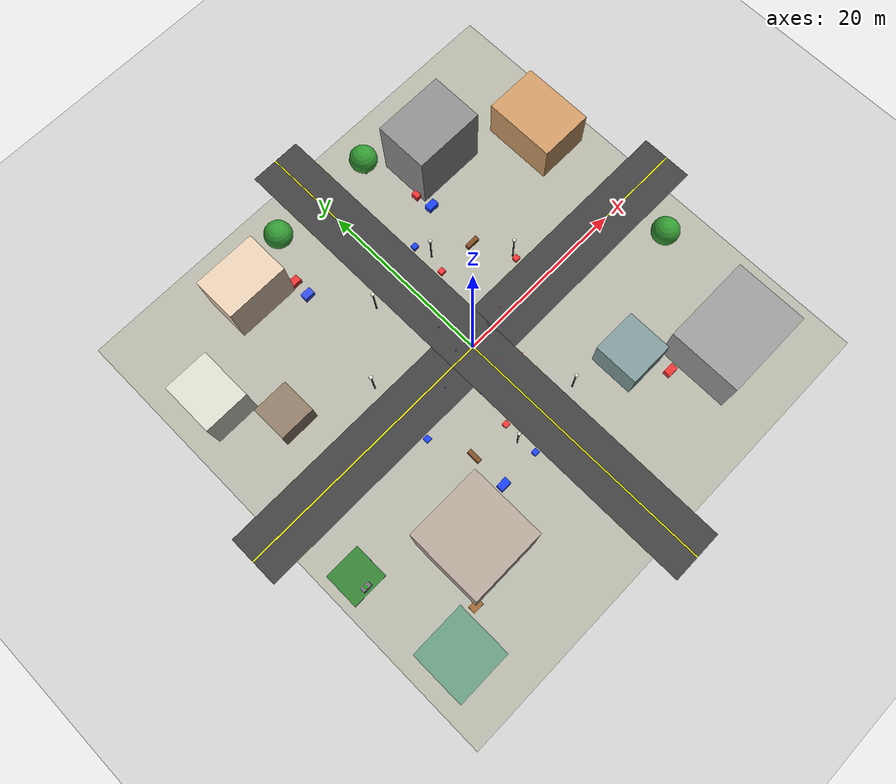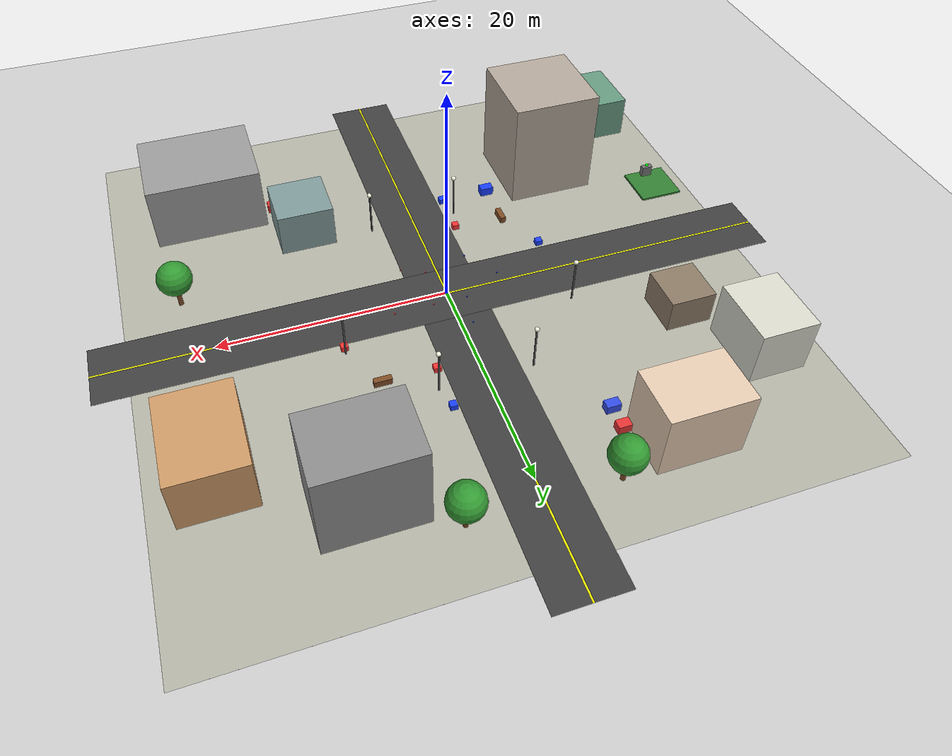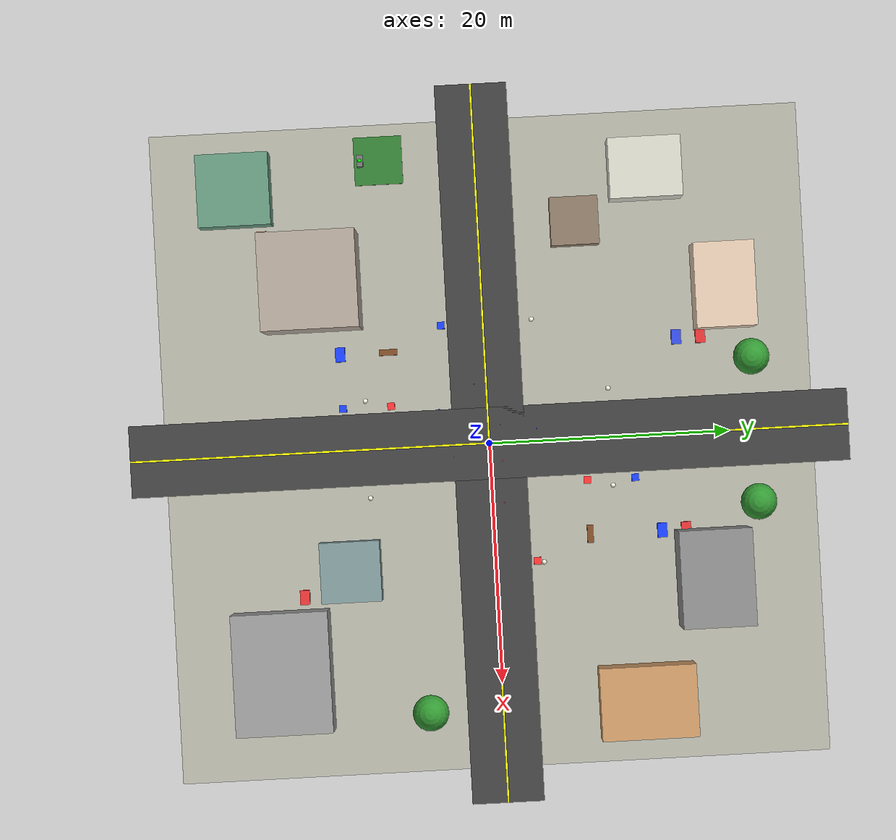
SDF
<sdf version="1.6">
 <world name="gcar_city">
  <include><uri>model://sun</uri></include>
  <include><uri>model://ground_plane</uri></include>
  <model name="road_ns_main">
   <static>true</static>
   <link name="link">
    <visual name="visual">
     <geometry><box><size>6 60 0.001</size></box></geometry>
     <material><ambient>0.2 0.2 0.2 1</ambient><diffuse>0.25 0.25 0.25 1</diffuse></material>
    </visual>
   </link>
  </model>
  <model name="road_ew_main">
   <static>true</static>
   <link name="link">
    <visual name="visual">
     <geometry><box><size>60 6 0.001</size></box></geometry>
     <material><ambient>0.2 0.2 0.2 1</ambient><diffuse>0.25 0.25 0.25 1</diffuse></material>
    </visual>
   </link>
  </model>
  <model name="lane_marking_ns">
   <static>true</static>
   <pose>0 0 0.001 0 0 0</pose>
   <link name="link">
    <visual name="visual">
     <geometry><box><size>0.15 60 0.001</size></box></geometry>
     <material><ambient>1 1 0 1</ambient><diffuse>1 1 0 1</diffuse></material>
    </visual>
   </link>
  </model>
  <model name="lane_marking_ew">
   <static>true</static>
   <pose>0 0 0.001 0 0 1.5708</pose>
   <link name="link">
    <visual name="visual">
     <geometry><box><size>0.15 60 0.001</size></box></geometry>
     <material><ambient>1 1 0 1</ambient><diffuse>1 1 0 1</diffuse></material>
    </visual>
   </link>
  </model>
  <model name="sidewalk_ne">
   <static>true</static>
   <pose>15 15 0.0 0 0 0</pose>
   <link name="link">
    <collision name="collision"><geometry><box><size>24 24 0.001</size></box></geometry></collision>
    <visual name="visual">
     <geometry><box><size>24 24 0.001</size></box></geometry>
     <material><ambient>0.6 0.6 0.55 1</ambient><diffuse>0.7 0.7 0.65 1</diffuse></material>
    </visual>
   </link>
  </model>
  <model name="sidewalk_nw">
   <static>true</static>
   <pose>-15 15 0.0 0 0 0</pose>
   <link name="link">
    <collision name="collision"><geometry><box><size>24 24 0.001</size></box></geometry></collision>
    <visual name="visual">
     <geometry><box><size>24 24 0.001</size></box></geometry>
     <material><ambient>0.6 0.6 0.55 1</ambient><diffuse>0.7 0.7 0.65 1</diffuse></material>
    </visual>
   </link>
  </model>
  <model name="sidewalk_se">
   <static>true</static>
   <pose>15 -15 0.0 0 0 0</pose>
   <link name="link">
    <collision name="collision"><geometry><box><size>24 24 0.001</size></box></geometry></collision>
    <visual name="visual">
     <geometry><box><size>24 24 0.001</size></box></geometry>
     <material><ambient>0.6 0.6 0.55 1</ambient><diffuse>0.7 0.7 0.65 1</diffuse></material>
    </visual>
   </link>
  </model>
  <model name="sidewalk_sw">
   <static>true</static>
   <pose>-15 -15 0.0 0 0 0</pose>
   <link name="link">
    <collision name="collision"><geometry><box><size>24 24 0.001</size></box></geometry></collision>
    <visual name="visual">
     <geometry><box><size>24 24 0.001</size></box></geometry>
     <material><ambient>0.6 0.6 0.55 1</ambient><diffuse>0.7 0.7 0.65 1</diffuse></material>
    </visual>
   </link>
  </model>
  <model name="building_office_1">
   <static>true</static>
   <pose>12 18 4 0 0 0</pose>
   <link name="link">
    <collision name="collision"><geometry><box><size>8 6 8</size></box></geometry></collision>
    <visual name="visual">
     <geometry><box><size>8 6 8</size></box></geometry>
     <material><ambient>0.45 0.45 0.45 1</ambient><diffuse>0.55 0.55 0.55 1</diffuse></material>
    </visual>
   </link>
  </model>
  <model name="building_commercial_1">
   <static>true</static>
   <pose>22 12 2.5 0 0 0</pose>
   <link name="link">
    <collision name="collision"><geometry><box><size>6 8 5</size></box></geometry></collision>
    <visual name="visual">
     <geometry><box><size>6 8 5</size></box></geometry>
     <material><ambient>0.7 0.5 0.3 1</ambient><diffuse>0.8 0.6 0.4 1</diffuse></material>
    </visual>
   </link>
  </model>
  <model name="building_residential_1">
   <static>true</static>
   <pose>-12 20 3 0 0 0</pose>
   <link name="link">
    <collision name="collision"><geometry><box><size>7 5 6</size></box></geometry></collision>
    <visual name="visual">
     <geometry><box><size>7 5 6</size></box></geometry>
     <material><ambient>0.8 0.7 0.6 1</ambient><diffuse>0.9 0.8 0.7 1</diffuse></material>
    </visual>
   </link>
  </model>
  <model name="building_residential_2">
   <static>true</static>
   <pose>-22 14 2.5 0 0 0</pose>
   <link name="link">
    <collision name="collision"><geometry><box><size>5 6 5</size></box></geometry></collision>
    <visual name="visual">
     <geometry><box><size>5 6 5</size></box></geometry>
     <material><ambient>0.75 0.75 0.7 1</ambient><diffuse>0.85 0.85 0.8 1</diffuse></material>
    </visual>
   </link>
  </model>
  <model name="building_shop_1">
   <static>true</static>
   <pose>-18 8 1.5 0 0 0</pose>
   <link name="link">
    <collision name="collision"><geometry><box><size>4 4 3</size></box></geometry></collision>
    <visual name="visual">
     <geometry><box><size>4 4 3</size></box></geometry>
     <material><ambient>0.45 0.38 0.30 1</ambient><diffuse>0.55 0.48 0.40 1</diffuse></material>
    </visual>
   </link>
  </model>
  <model name="building_warehouse_1">
   <static>true</static>
   <pose>18 -18 3 0 0 0</pose>
   <link name="link">
    <collision name="collision"><geometry><box><size>10 8 6</size></box></geometry></collision>
    <visual name="visual">
     <geometry><box><size>10 8 6</size></box></geometry>
     <material><ambient>0.5 0.5 0.5 1</ambient><diffuse>0.6 0.6 0.6 1</diffuse></material>
    </visual>
   </link>
  </model>
  <model name="building_office_2">
   <static>true</static>
   <pose>10 -12 2 0 0 0</pose>
   <link name="link">
    <collision name="collision"><geometry><box><size>5 5 4</size></box></geometry></collision>
    <visual name="visual">
     <geometry><box><size>5 5 4</size></box></geometry>
     <material><ambient>0.4 0.5 0.5 1</ambient><diffuse>0.5 0.6 0.6 1</diffuse></material>
    </visual>
   </link>
  </model>
  <model name="building_apartment_1">
   <static>true</static>
   <pose>-14 -14 5 0 0 0</pose>
   <link name="link">
    <collision name="collision"><geometry><box><size>8 8 10</size></box></geometry></collision>
    <visual name="visual">
     <geometry><box><size>8 8 10</size></box></geometry>
     <material><ambient>0.6 0.55 0.5 1</ambient><diffuse>0.7 0.65 0.6 1</diffuse></material>
    </visual>
   </link>
  </model>
  <model name="building_community">
   <static>true</static>
   <pose>-22 -20 2 0 0 0</pose>
   <link name="link">
    <collision name="collision"><geometry><box><size>6 6 4</size></box></geometry></collision>
    <visual name="visual">
     <geometry><box><size>6 6 4</size></box></geometry>
     <material><ambient>0.3 0.5 0.4 1</ambient><diffuse>0.4 0.6 0.5 1</diffuse></material>
    </visual>
   </link>
  </model>
  <model name="lamp_post_1">
   <static>true</static>
   <pose>4 10 0 0 0 0</pose>
   <link name="pole">
    <visual name="pole_visual">
     <pose>0 0 2 0 0 0</pose>
     <geometry><cylinder><radius>0.08</radius><length>4</length></cylinder></geometry>
     <material><ambient>0.2 0.2 0.2 1</ambient><diffuse>0.3 0.3 0.3 1</diffuse></material>
    </visual>
    <visual name="light_visual">
     <pose>0 0 4.2 0 0 0</pose>
     <geometry><sphere><radius>0.2</radius></sphere></geometry>
     <material>
      <ambient>1 1 0.8 1</ambient>
      <diffuse>1 1 0.9 1</diffuse>
      <emissive>0.8 0.8 0.5 1</emissive>
     </material>
    </visual>
   </link>
  </model>
  <model name="lamp_post_2">
   <static>true</static>
   <pose>-4 10 0 0 0 0</pose>
   <link name="pole">
    <visual name="pole_visual">
     <pose>0 0 2 0 0 0</pose>
     <geometry><cylinder><radius>0.08</radius><length>4</length></cylinder></geometry>
     <material><ambient>0.2 0.2 0.2 1</ambient><diffuse>0.3 0.3 0.3 1</diffuse></material>
    </visual>
    <visual name="light_visual">
     <pose>0 0 4.2 0 0 0</pose>
     <geometry><sphere><radius>0.2</radius></sphere></geometry>
     <material>
      <ambient>1 1 0.8 1</ambient>
      <diffuse>1 1 0.9 1</diffuse>
      <emissive>0.8 0.8 0.5 1</emissive>
     </material>
    </visual>
   </link>
  </model>
  <model name="lamp_post_3">
   <static>true</static>
   <pose>4 -10 0 0 0 0</pose>
   <link name="pole">
    <visual name="pole_visual">
     <pose>0 0 2 0 0 0</pose>
     <geometry><cylinder><radius>0.08</radius><length>4</length></cylinder></geometry>
     <material><ambient>0.2 0.2 0.2 1</ambient><diffuse>0.3 0.3 0.3 1</diffuse></material>
    </visual>
    <visual name="light_visual">
     <pose>0 0 4.2 0 0 0</pose>
     <geometry><sphere><radius>0.2</radius></sphere></geometry>
     <material>
      <ambient>1 1 0.8 1</ambient>
      <diffuse>1 1 0.9 1</diffuse>
      <emissive>0.8 0.8 0.5 1</emissive>
     </material>
    </visual>
   </link>
  </model>
  <model name="lamp_post_4">
   <static>true</static>
   <pose>-4 -10 0 0 0 0</pose>
   <link name="pole">
    <visual name="pole_visual">
     <pose>0 0 2 0 0 0</pose>
     <geometry><cylinder><radius>0.08</radius><length>4</length></cylinder></geometry>
     <material><ambient>0.2 0.2 0.2 1</ambient><diffuse>0.3 0.3 0.3 1</diffuse></material>
    </visual>
    <visual name="light_visual">
     <pose>0 0 4.2 0 0 0</pose>
     <geometry><sphere><radius>0.2</radius></sphere></geometry>
     <material>
      <ambient>1 1 0.8 1</ambient>
      <diffuse>1 1 0.9 1</diffuse>
      <emissive>0.8 0.8 0.5 1</emissive>
     </material>
    </visual>
   </link>
  </model>
  <model name="lamp_post_5">
   <static>true</static>
   <pose>10 4 0 0 0 0</pose>
   <link name="pole">
    <visual name="pole_visual">
     <pose>0 0 2 0 0 0</pose>
     <geometry><cylinder><radius>0.08</radius><length>4</length></cylinder></geometry>
     <material><ambient>0.2 0.2 0.2 1</ambient><diffuse>0.3 0.3 0.3 1</diffuse></material>
    </visual>
    <visual name="light_visual">
     <pose>0 0 4.2 0 0 0</pose>
     <geometry><sphere><radius>0.2</radius></sphere></geometry>
     <material>
      <ambient>1 1 0.8 1</ambient>
      <diffuse>1 1 0.9 1</diffuse>
      <emissive>0.8 0.8 0.5 1</emissive>
     </material>
    </visual>
   </link>
  </model>
  <model name="lamp_post_6">
   <static>true</static>
   <pose>-10 4 0 0 0 0</pose>
   <link name="pole">
    <visual name="pole_visual">
     <pose>0 0 2 0 0 0</pose>
     <geometry><cylinder><radius>0.08</radius><length>4</length></cylinder></geometry>
     <material><ambient>0.2 0.2 0.2 1</ambient><diffuse>0.3 0.3 0.3 1</diffuse></material>
    </visual>
    <visual name="light_visual">
     <pose>0 0 4.2 0 0 0</pose>
     <geometry><sphere><radius>0.2</radius></sphere></geometry>
     <material>
      <ambient>1 1 0.8 1</ambient>
      <diffuse>1 1 0.9 1</diffuse>
      <emissive>0.8 0.8 0.5 1</emissive>
     </material>
    </visual>
   </link>
  </model>
  <model name="charging_station">
   <static>true</static>
   <pose>-24 -8 0.1 0 0 0</pose>
   <link name="base">
    <collision name="collision"><geometry><box><size>4 4 0.2</size></box></geometry></collision>
    <visual name="base_visual">
     <geometry><box><size>4 4 0.2</size></box></geometry>
     <material><ambient>0.1 0.4 0.1 1</ambient><diffuse>0.2 0.5 0.2 1</diffuse></material>
    </visual>
    <visual name="charger_visual">
     <pose>0 -1.5 0.6 0 0 0</pose>
     <geometry><box><size>1 0.5 1</size></box></geometry>
     <material><ambient>0.35 0.35 0.35 1</ambient><diffuse>0.45 0.45 0.45 1</diffuse></material>
    </visual>
    <visual name="indicator_visual">
     <pose>0 -1.5 1.2 0 0 0</pose>
     <geometry><sphere><radius>0.15</radius></sphere></geometry>
     <material><ambient>0 1 0 1</ambient><diffuse>0 1 0 1</diffuse><emissive>0 0.8 0 1</emissive></material>
    </visual>
   </link>
  </model>
  <model name="bench_1">
   <static>true</static>
   <pose>8 8 0.3 0 0 0</pose>
   <link name="link">
    <collision name="collision"><geometry><box><size>1.5 0.5 0.6</size></box></geometry></collision>
    <visual name="visual">
     <geometry><box><size>1.5 0.5 0.6</size></box></geometry>
     <material><ambient>0.4 0.25 0.1 1</ambient><diffuse>0.5 0.3 0.15 1</diffuse></material>
    </visual>
   </link>
  </model>
  <model name="bench_2">
   <static>true</static>
   <pose>-8 -8 0.3 0 0 1.5708</pose>
   <link name="link">
    <collision name="collision"><geometry><box><size>1.5 0.5 0.6</size></box></geometry></collision>
    <visual name="visual">
     <geometry><box><size>1.5 0.5 0.6</size></box></geometry>
     <material><ambient>0.4 0.25 0.1 1</ambient><diffuse>0.5 0.3 0.15 1</diffuse></material>
    </visual>
   </link>
  </model>
  <model name="tree_1">
   <static>true</static>
   <pose>6 22 0 0 0 0</pose>
   <link name="link">
    <visual name="trunk">
     <pose>0 0 1 0 0 0</pose>
     <geometry><cylinder><radius>0.2</radius><length>2</length></cylinder></geometry>
     <material><ambient>0.4 0.25 0.1 1</ambient><diffuse>0.5 0.3 0.15 1</diffuse></material>
    </visual>
    <visual name="leaves">
     <pose>0 0 3 0 0 0</pose>
     <geometry><sphere><radius>1.5</radius></sphere></geometry>
     <material><ambient>0.1 0.5 0.1 1</ambient><diffuse>0.2 0.6 0.2 1</diffuse></material>
    </visual>
   </link>
  </model>
  <model name="tree_2">
   <static>true</static>
   <pose>-6 22 0 0 0 0</pose>
   <link name="link">
    <visual name="trunk">
     <pose>0 0 1 0 0 0</pose>
     <geometry><cylinder><radius>0.2</radius><length>2</length></cylinder></geometry>
     <material><ambient>0.4 0.25 0.1 1</ambient><diffuse>0.5 0.3 0.15 1</diffuse></material>
    </visual>
    <visual name="leaves">
     <pose>0 0 3 0 0 0</pose>
     <geometry><sphere><radius>1.5</radius></sphere></geometry>
     <material><ambient>0.1 0.5 0.1 1</ambient><diffuse>0.2 0.6 0.2 1</diffuse></material>
    </visual>
   </link>
  </model>
  <model name="tree_3">
   <static>true</static>
   <pose>22 -6 0 0 0 0</pose>
   <link name="link">
    <visual name="trunk">
     <pose>0 0 1 0 0 0</pose>
     <geometry><cylinder><radius>0.2</radius><length>2</length></cylinder></geometry>
     <material><ambient>0.4 0.25 0.1 1</ambient><diffuse>0.5 0.3 0.15 1</diffuse></material>
    </visual>
    <visual name="leaves">
     <pose>0 0 3 0 0 0</pose>
     <geometry><sphere><radius>1.5</radius></sphere></geometry>
     <material><ambient>0.1 0.5 0.1 1</ambient><diffuse>0.2 0.6 0.2 1</diffuse></material>
    </visual>
   </link>
  </model>
  <model name="roadside_bin_red_1">
   <static>true</static>
   <pose>3.5 8 0.25 0 0 0</pose>
   <link name="link">
    <collision name="collision"><geometry><box><size>0.6 0.6 0.5</size></box></geometry></collision>
    <visual name="visual">
     <geometry><box><size>0.6 0.6 0.5</size></box></geometry>
     <material>
      <ambient>0.9 0.1 0.1 1</ambient>
      <diffuse>1.0 0.2 0.2 1</diffuse>
      <specular>0.5 0.5 0.5 1</specular>
     </material>
    </visual>
   </link>
  </model>
  <model name="roadside_bin_blue_1">
   <static>true</static>
   <pose>3.5 12 0.25 0 0 0</pose>
   <link name="link">
    <collision name="collision"><geometry><box><size>0.6 0.6 0.5</size></box></geometry></collision>
    <visual name="visual">
     <geometry><box><size>0.6 0.6 0.5</size></box></geometry>
     <material>
      <ambient>0.05 0.15 0.9 1</ambient>
      <diffuse>0.10 0.25 1.0 1</diffuse>
      <specular>0.5 0.5 0.5 1</specular>
     </material>
    </visual>
   </link>
  </model>
  <model name="roadside_bin_red_2">
   <static>true</static>
   <pose>-3.5 -8 0.25 0 0 0</pose>
   <link name="link">
    <collision name="collision"><geometry><box><size>0.6 0.6 0.5</size></box></geometry></collision>
    <visual name="visual">
     <geometry><box><size>0.6 0.6 0.5</size></box></geometry>
     <material>
      <ambient>0.9 0.1 0.1 1</ambient>
      <diffuse>1.0 0.2 0.2 1</diffuse>
      <specular>0.5 0.5 0.5 1</specular>
     </material>
    </visual>
   </link>
  </model>
  <model name="roadside_bin_blue_2">
   <static>true</static>
   <pose>-3.5 -12 0.25 0 0 0</pose>
   <link name="link">
    <collision name="collision"><geometry><box><size>0.6 0.6 0.5</size></box></geometry></collision>
    <visual name="visual">
     <geometry><box><size>0.6 0.6 0.5</size></box></geometry>
     <material>
      <ambient>0.05 0.15 0.9 1</ambient>
      <diffuse>0.10 0.25 1.0 1</diffuse>
      <specular>0.5 0.5 0.5 1</specular>
     </material>
    </visual>
   </link>
  </model>
  <model name="roadside_bin_red_3">
   <static>true</static>
   <pose>10 3.5 0.25 0 0 0</pose>
   <link name="link">
    <collision name="collision"><geometry><box><size>0.6 0.6 0.5</size></box></geometry></collision>
    <visual name="visual">
     <geometry><box><size>0.6 0.6 0.5</size></box></geometry>
     <material>
      <ambient>0.9 0.1 0.1 1</ambient>
      <diffuse>1.0 0.2 0.2 1</diffuse>
      <specular>0.5 0.5 0.5 1</specular>
     </material>
    </visual>
   </link>
  </model>
  <model name="roadside_bin_blue_3">
   <static>true</static>
   <pose>-10 -3.5 0.25 0 0 0</pose>
   <link name="link">
    <collision name="collision"><geometry><box><size>0.6 0.6 0.5</size></box></geometry></collision>
    <visual name="visual">
     <geometry><box><size>0.6 0.6 0.5</size></box></geometry>
     <material>
      <ambient>0.05 0.15 0.9 1</ambient>
      <diffuse>0.10 0.25 1.0 1</diffuse>
      <specular>0.5 0.5 0.5 1</specular>
     </material>
    </visual>
   </link>
  </model>
  <model name="dumpster_general_1">
   <static>true</static>
   <pose>8 16 0.4 0 0 0</pose>
   <link name="link">
    <collision name="collision"><geometry><box><size>1.2 0.8 0.8</size></box></geometry></collision>
    <visual name="visual">
     <geometry><box><size>1.2 0.8 0.8</size></box></geometry>
     <material>
      <ambient>0.8 0.1 0.1 1</ambient>
      <diffuse>0.9 0.2 0.2 1</diffuse>
      <specular>0.3 0.3 0.3 1</specular>
     </material>
    </visual>
   </link>
  </model>
  <model name="dumpster_recycling_1">
   <static>true</static>
   <pose>8 14 0.4 0 0 0</pose>
   <link name="link">
    <collision name="collision"><geometry><box><size>1.2 0.8 0.8</size></box></geometry></collision>
    <visual name="visual">
     <geometry><box><size>1.2 0.8 0.8</size></box></geometry>
     <material>
      <ambient>0.05 0.15 0.9 1</ambient>
      <diffuse>0.10 0.25 1.0 1</diffuse>
      <specular>0.3 0.3 0.3 1</specular>
     </material>
    </visual>
   </link>
  </model>
  <model name="dumpster_general_2">
   <static>true</static>
   <pose>-8 18 0.4 0 0 0</pose>
   <link name="link">
    <collision name="collision"><geometry><box><size>1.2 0.8 0.8</size></box></geometry></collision>
    <visual name="visual">
     <geometry><box><size>1.2 0.8 0.8</size></box></geometry>
     <material>
      <ambient>0.8 0.1 0.1 1</ambient>
      <diffuse>0.9 0.2 0.2 1</diffuse>
      <specular>0.3 0.3 0.3 1</specular>
     </material>
    </visual>
   </link>
  </model>
  <model name="dumpster_paper_1">
   <static>true</static>
   <pose>-8 16 0.4 0 0 0</pose>
   <link name="link">
    <collision name="collision"><geometry><box><size>1.2 0.8 0.8</size></box></geometry></collision>
    <visual name="visual">
     <geometry><box><size>1.2 0.8 0.8</size></box></geometry>
     <material>
      <ambient>0.1 0.2 0.7 1</ambient>
      <diffuse>0.2 0.3 0.9 1</diffuse>
      <specular>0.3 0.3 0.3 1</specular>
     </material>
    </visual>
   </link>
  </model>
  <model name="dumpster_general_3">
   <static>true</static>
   <pose>12 -16 0.4 0 0 0</pose>
   <link name="link">
    <collision name="collision"><geometry><box><size>1.2 0.8 0.8</size></box></geometry></collision>
    <visual name="visual">
     <geometry><box><size>1.2 0.8 0.8</size></box></geometry>
     <material>
      <ambient>0.8 0.1 0.1 1</ambient>
      <diffuse>0.9 0.2 0.2 1</diffuse>
      <specular>0.3 0.3 0.3 1</specular>
     </material>
    </visual>
   </link>
  </model>
  <model name="dumpster_metal_1">
   <static>true</static>
   <pose>14 -16 0.4 0 0 0</pose>
   <link name="link">
    <collision name="collision"><geometry><box><size>1.2 0.8 0.8</size></box></geometry></collision>
    <visual name="visual">
     <geometry><box><size>1.2 0.8 0.8</size></box></geometry>
     <material>
      <ambient>0.8 0.7 0.1 1</ambient>
      <diffuse>0.9 0.8 0.2 1</diffuse>
      <specular>0.3 0.3 0.3 1</specular>
     </material>
    </visual>
   </link>
  </model>
  <model name="dumpster_recycling_2">
   <static>true</static>
   <pose>-8 -12 0.4 0 0 0</pose>
   <link name="link">
    <collision name="collision"><geometry><box><size>1.2 0.8 0.8</size></box></geometry></collision>
    <visual name="visual">
     <geometry><box><size>1.2 0.8 0.8</size></box></geometry>
     <material>
      <ambient>0.05 0.15 0.9 1</ambient>
      <diffuse>0.10 0.25 1.0 1</diffuse>
      <specular>0.3 0.3 0.3 1</specular>
     </material>
    </visual>
   </link>
  </model>
  <model name="dumpster_organic_1">
   <static>true</static>
   <pose>-18 -18 0.4 0 0 0</pose>
   <link name="link">
    <collision name="collision"><geometry><box><size>1.2 0.8 0.8</size></box></geometry></collision>
    <visual name="visual">
     <geometry><box><size>1.2 0.8 0.8</size></box></geometry>
     <material>
      <ambient>0.5 0.3 0.1 1</ambient>
      <diffuse>0.6 0.4 0.2 1</diffuse>
      <specular>0.3 0.3 0.3 1</specular>
     </material>
    </visual>
   </link>
  </model>
  <model name="waste_red_1">
   <static>false</static>
   <pose>1.5 1.0 0.05 0 0 0</pose>
   <link name="link">
    <collision name="collision"><geometry><box><size>0.1 0.1 0.1</size></box></geometry></collision>
    <visual name="visual">
     <geometry><box><size>0.1 0.1 0.1</size></box></geometry>
     <material><ambient>0.9 0.1 0.1 1</ambient><diffuse>1.0 0.2 0.2 1</diffuse></material>
    </visual>
    <inertial>
     <mass>0.1</mass>
     <inertia><ixx>0.0001</ixx><ixy>0</ixy><ixz>0</ixz><iyy>0.0001</iyy><iyz>0</iyz><izz>0.0001</izz></inertia>
    </inertial>
   </link>
  </model>
  <model name="waste_blue_1">
   <static>false</static>
   <pose>-1.5 1.0 0.05 0 0 0</pose>
   <link name="link">
    <collision name="collision"><geometry><box><size>0.1 0.1 0.1</size></box></geometry></collision>
    <visual name="visual">
     <geometry><box><size>0.1 0.1 0.1</size></box></geometry>
     <material><ambient>0.05 0.15 0.9 1</ambient><diffuse>0.10 0.25 1.0 1</diffuse></material>
    </visual>
    <inertial>
     <mass>0.1</mass>
     <inertia><ixx>0.0001</ixx><ixy>0</ixy><ixz>0</ixz><iyy>0.0001</iyy><iyz>0</iyz><izz>0.0001</izz></inertia>
    </inertial>
   </link>
  </model>
  <model name="waste_red_2">
   <static>false</static>
   <pose>1.0 -3.0 0.05 0 0 0</pose>
   <link name="link">
    <collision name="collision"><geometry><box><size>0.1 0.1 0.1</size></box></geometry></collision>
    <visual name="visual">
     <geometry><box><size>0.1 0.1 0.1</size></box></geometry>
     <material><ambient>0.9 0.1 0.1 1</ambient><diffuse>1.0 0.2 0.2 1</diffuse></material>
    </visual>
    <inertial>
     <mass>0.1</mass>
     <inertia><ixx>0.0001</ixx><ixy>0</ixy><ixz>0</ixz><iyy>0.0001</iyy><iyz>0</iyz><izz>0.0001</izz></inertia>
    </inertial>
   </link>
  </model>
  <model name="waste_blue_2">
   <static>false</static>
   <pose>-1.0 4.0 0.05 0 0 0</pose>
   <link name="link">
    <collision name="collision"><geometry><box><size>0.1 0.1 0.1</size></box></geometry></collision>
    <visual name="visual">
     <geometry><box><size>0.1 0.1 0.1</size></box></geometry>
     <material><ambient>0.05 0.15 0.9 1</ambient><diffuse>0.10 0.25 1.0 1</diffuse></material>
    </visual>
    <inertial>
     <mass>0.1</mass>
     <inertia><ixx>0.0001</ixx><ixy>0</ixy><ixz>0</ixz><iyy>0.0001</iyy><iyz>0</iyz><izz>0.0001</izz></inertia>
    </inertial>
   </link>
  </model>
  <model name="waste_red_3">
   <static>false</static>
   <pose>5.0 1.0 0.05 0 0 0</pose>
   <link name="link">
    <collision name="collision"><geometry><box><size>0.1 0.1 0.1</size></box></geometry></collision>
    <visual name="visual">
     <geometry><box><size>0.1 0.1 0.1</size></box></geometry>
     <material><ambient>0.9 0.1 0.1 1</ambient><diffuse>1.0 0.2 0.2 1</diffuse></material>
    </visual>
    <inertial>
     <mass>0.1</mass>
     <inertia><ixx>0.0001</ixx><ixy>0</ixy><ixz>0</ixz><iyy>0.0001</iyy><iyz>0</iyz><izz>0.0001</izz></inertia>
    </inertial>
   </link>
  </model>
  <model name="waste_blue_3">
   <static>false</static>
   <pose>-5.0 -1.0 0.05 0 0 0</pose>
   <link name="link">
    <collision name="collision"><geometry><box><size>0.1 0.1 0.1</size></box></geometry></collision>
    <visual name="visual">
     <geometry><box><size>0.1 0.1 0.1</size></box></geometry>
     <material><ambient>0.05 0.15 0.9 1</ambient><diffuse>0.10 0.25 1.0 1</diffuse></material>
    </visual>
    <inertial>
     <mass>0.1</mass>
     <inertia><ixx>0.0001</ixx><ixy>0</ixy><ixz>0</ixz><iyy>0.0001</iyy><iyz>0</iyz><izz>0.0001</izz></inertia>
    </inertial>
   </link>
  </model>
  <model name="waste_red_4">
   <static>false</static>
   <pose>3.0 -4.0 0.05 0 0 0</pose>
   <link name="link">
    <collision name="collision"><geometry><box><size>0.1 0.1 0.1</size></box></geometry></collision>
    <visual name="visual">
     <geometry><box><size>0.1 0.1 0.1</size></box></geometry>
     <material><ambient>0.9 0.1 0.1 1</ambient><diffuse>1.0 0.2 0.2 1</diffuse></material>
    </visual>
    <inertial>
     <mass>0.1</mass>
     <inertia><ixx>0.0001</ixx><ixy>0</ixy><ixz>0</ixz><iyy>0.0001</iyy><iyz>0</iyz><izz>0.0001</izz></inertia>
    </inertial>
   </link>
  </model>
  <model name="waste_blue_4">
   <static>false</static>
   <pose>-3.0 -4.0 0.05 0 0 0</pose>
   <link name="link">
    <collision name="collision"><geometry><box><size>0.1 0.1 0.1</size></box></geometry></collision>
    <visual name="visual">
     <geometry><box><size>0.1 0.1 0.1</size></box></geometry>
     <material><ambient>0.05 0.15 0.9 1</ambient><diffuse>0.10 0.25 1.0 1</diffuse></material>
    </visual>
    <inertial>
     <mass>0.1</mass>
     <inertia><ixx>0.0001</ixx><ixy>0</ixy><ixz>0</ixz><iyy>0.0001</iyy><iyz>0</iyz><izz>0.0001</izz></inertia>
    </inertial>
   </link>
  </model>
 </world>
</sdf>
